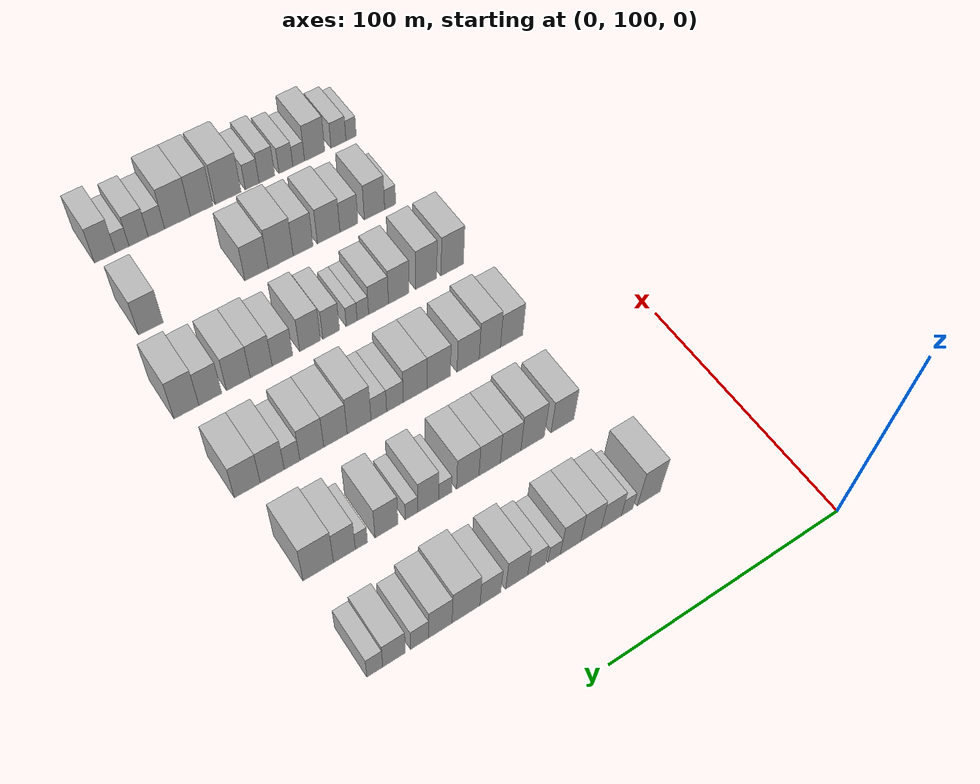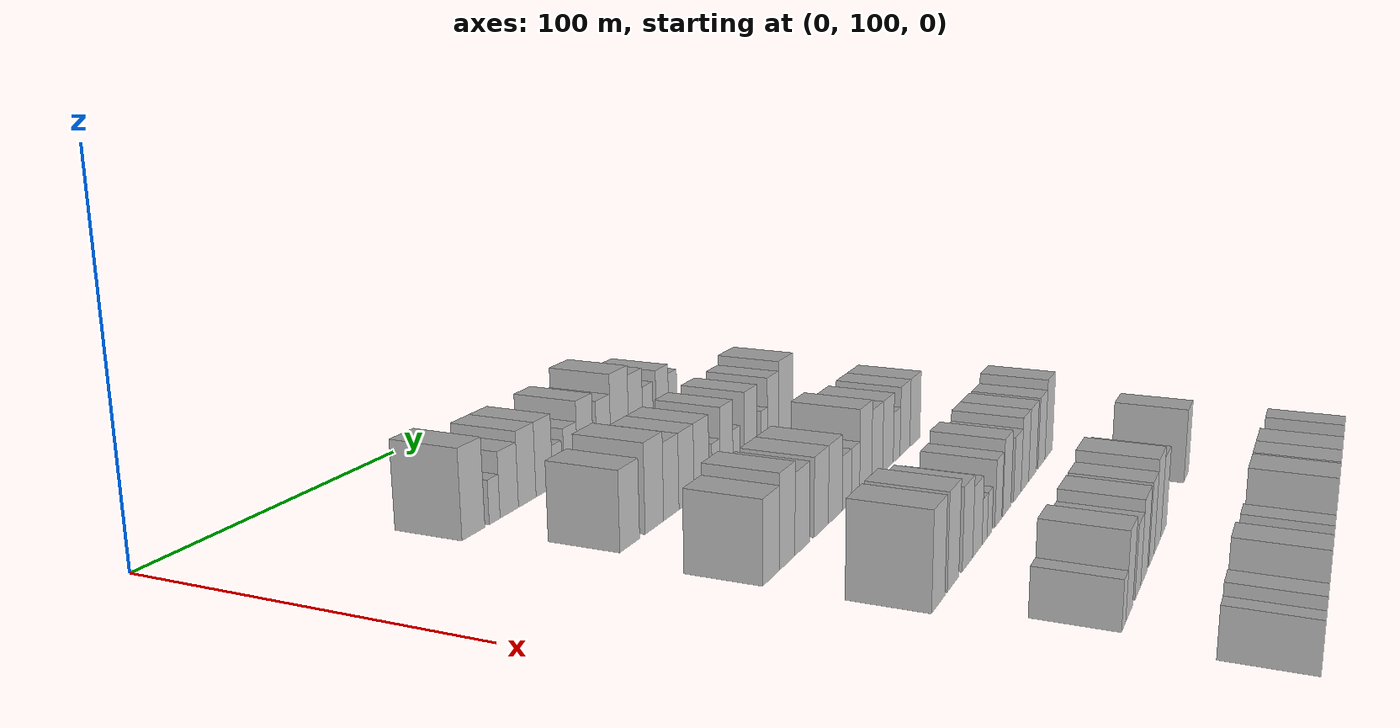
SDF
<sdf version="1.6">
 <world name="default">
  <model name="building_91">
   <static>1</static>
   <pose>50.0000 151.5996 0 0.000000 0.000000 0.000000</pose>
   <link name="link">
    <pose>0 0 12.00 0 0 0</pose>
    <collision name="collision"><geometry><box><size>20.0000 10.1320 24.0000</size></box></geometry></collision>
    <visual name="visual">
     <cast_shadows>0</cast_shadows>
     <geometry><box><size>20.0000 10.1320 24.0000</size></box></geometry>
     <material>
      <script>
       <uri>model://HANNAS_wall/materials/scripts</uri>
       <uri>model://HANNAS_wall/materials/textures</uri>
       <name>vrc/HANNAS_wall</name>
      </script>
     </material>
    </visual>
   </link>
  </model>
  <model name="building_92">
   <static>1</static>
   <pose>50.0000 161.1794 0 0.000000 0.000000 0.000000</pose>
   <link name="link">
    <pose>0 0 6.00 0 0 0</pose>
    <collision name="collision"><geometry><box><size>20.0000 5.0277 12.0000</size></box></geometry></collision>
    <visual name="visual">
     <cast_shadows>0</cast_shadows>
     <geometry><box><size>20.0000 5.0277 12.0000</size></box></geometry>
     <material>
      <script>
       <uri>model://HANNAS_wall/materials/scripts</uri>
       <uri>model://HANNAS_wall/materials/textures</uri>
       <name>vrc/HANNAS_wall</name>
      </script>
     </material>
    </visual>
   </link>
  </model>
  <model name="building_93">
   <static>1</static>
   <pose>50.0000 168.1023 0 0.000000 0.000000 0.000000</pose>
   <link name="link">
    <pose>0 0 9.00 0 0 0</pose>
    <collision name="collision"><geometry><box><size>20.0000 8.8181 18.0000</size></box></geometry></collision>
    <visual name="visual">
     <cast_shadows>0</cast_shadows>
     <geometry><box><size>20.0000 8.8181 18.0000</size></box></geometry>
     <material>
      <script>
       <uri>model://HANNAS_wall/materials/scripts</uri>
       <uri>model://HANNAS_wall/materials/textures</uri>
       <name>vrc/HANNAS_wall</name>
      </script>
     </material>
    </visual>
   </link>
  </model>
  <model name="building_94">
   <static>1</static>
   <pose>50.0000 176.9083 0 0.000000 0.000000 0.000000</pose>
   <link name="link">
    <pose>0 0 10.50 0 0 0</pose>
    <collision name="collision"><geometry><box><size>20.0000 8.7939 21.0000</size></box></geometry></collision>
    <visual name="visual">
     <cast_shadows>0</cast_shadows>
     <geometry><box><size>20.0000 8.7939 21.0000</size></box></geometry>
     <material>
      <script>
       <uri>model://HANNAS_wall/materials/scripts</uri>
       <uri>model://HANNAS_wall/materials/textures</uri>
       <name>vrc/HANNAS_wall</name>
      </script>
     </material>
    </visual>
   </link>
  </model>
  <model name="building_95">
   <static>1</static>
   <pose>50.0000 185.6488 0 0.000000 0.000000 0.000000</pose>
   <link name="link">
    <pose>0 0 10.50 0 0 0</pose>
    <collision name="collision"><geometry><box><size>20.0000 8.6871 21.0000</size></box></geometry></collision>
    <visual name="visual">
     <cast_shadows>0</cast_shadows>
     <geometry><box><size>20.0000 8.6871 21.0000</size></box></geometry>
     <material>
      <script>
       <uri>model://HANNAS_wall/materials/scripts</uri>
       <uri>model://HANNAS_wall/materials/textures</uri>
       <name>vrc/HANNAS_wall</name>
      </script>
     </material>
    </visual>
   </link>
  </model>
  <model name="building_96">
   <static>1</static>
   <pose>50.0000 192.6153 0 0.000000 0.000000 0.000000</pose>
   <link name="link">
    <pose>0 0 6.00 0 0 0</pose>
    <collision name="collision"><geometry><box><size>20.0000 5.2459 12.0000</size></box></geometry></collision>
    <visual name="visual">
     <cast_shadows>0</cast_shadows>
     <geometry><box><size>20.0000 5.2459 12.0000</size></box></geometry>
     <material>
      <script>
       <uri>model://HANNAS_wall/materials/scripts</uri>
       <uri>model://HANNAS_wall/materials/textures</uri>
       <name>vrc/HANNAS_wall</name>
      </script>
     </material>
    </visual>
   </link>
  </model>
  <model name="building_97">
   <static>1</static>
   <pose>50.0000 199.9353 0 0.000000 0.000000 0.000000</pose>
   <link name="link">
    <pose>0 0 7.50 0 0 0</pose>
    <collision name="collision"><geometry><box><size>20.0000 7.3943 15.0000</size></box></geometry></collision>
    <visual name="visual">
     <cast_shadows>0</cast_shadows>
     <geometry><box><size>20.0000 7.3943 15.0000</size></box></geometry>
     <material>
      <script>
       <uri>model://HANNAS_wall/materials/scripts</uri>
       <uri>model://HANNAS_wall/materials/textures</uri>
       <name>vrc/HANNAS_wall</name>
      </script>
     </material>
    </visual>
   </link>
  </model>
  <model name="building_98">
   <static>1</static>
   <pose>50.0000 208.1953 0 0.000000 0.000000 0.000000</pose>
   <link name="link">
    <pose>0 0 10.50 0 0 0</pose>
    <collision name="collision"><geometry><box><size>20.0000 9.1257 21.0000</size></box></geometry></collision>
    <visual name="visual">
     <cast_shadows>0</cast_shadows>
     <geometry><box><size>20.0000 9.1257 21.0000</size></box></geometry>
     <material>
      <script>
       <uri>model://HANNAS_wall/materials/scripts</uri>
       <uri>model://HANNAS_wall/materials/textures</uri>
       <name>vrc/HANNAS_wall</name>
      </script>
     </material>
    </visual>
   </link>
  </model>
  <model name="building_99">
   <static>1</static>
   <pose>50.0000 218.9964 0 0.000000 0.000000 0.000000</pose>
   <link name="link">
    <pose>0 0 9.00 0 0 0</pose>
    <collision name="collision"><geometry><box><size>20.0000 8.4764 18.0000</size></box></geometry></collision>
    <visual name="visual">
     <cast_shadows>0</cast_shadows>
     <geometry><box><size>20.0000 8.4764 18.0000</size></box></geometry>
     <material>
      <script>
       <uri>model://HANNAS_wall/materials/scripts</uri>
       <uri>model://HANNAS_wall/materials/textures</uri>
       <name>vrc/HANNAS_wall</name>
      </script>
     </material>
    </visual>
   </link>
  </model>
  <model name="building_100">
   <static>1</static>
   <pose>50.0000 228.8260 0 0.000000 0.000000 0.000000</pose>
   <link name="link">
    <pose>0 0 12.00 0 0 0</pose>
    <collision name="collision"><geometry><box><size>20.0000 11.1829 24.0000</size></box></geometry></collision>
    <visual name="visual">
     <cast_shadows>0</cast_shadows>
     <geometry><box><size>20.0000 11.1829 24.0000</size></box></geometry>
     <material>
      <script>
       <uri>model://HANNAS_wall/materials/scripts</uri>
       <uri>model://HANNAS_wall/materials/textures</uri>
       <name>vrc/HANNAS_wall</name>
      </script>
     </material>
    </visual>
   </link>
  </model>
  <model name="building_101">
   <static>1</static>
   <pose>50.0000 239.0313 0 0.000000 0.000000 0.000000</pose>
   <link name="link">
    <pose>0 0 10.50 0 0 0</pose>
    <collision name="collision"><geometry><box><size>20.0000 9.2277 21.0000</size></box></geometry></collision>
    <visual name="visual">
     <cast_shadows>0</cast_shadows>
     <geometry><box><size>20.0000 9.2277 21.0000</size></box></geometry>
     <material>
      <script>
       <uri>model://HANNAS_wall/materials/scripts</uri>
       <uri>model://HANNAS_wall/materials/textures</uri>
       <name>vrc/HANNAS_wall</name>
      </script>
     </material>
    </visual>
   </link>
  </model>
  <model name="building_102">
   <static>1</static>
   <pose>50.0000 247.1735 0 0.000000 0.000000 0.000000</pose>
   <link name="link">
    <pose>0 0 7.50 0 0 0</pose>
    <collision name="collision"><geometry><box><size>20.0000 7.0565 15.0000</size></box></geometry></collision>
    <visual name="visual">
     <cast_shadows>0</cast_shadows>
     <geometry><box><size>20.0000 7.0565 15.0000</size></box></geometry>
     <material>
      <script>
       <uri>model://HANNAS_wall/materials/scripts</uri>
       <uri>model://HANNAS_wall/materials/textures</uri>
       <name>vrc/HANNAS_wall</name>
      </script>
     </material>
    </visual>
   </link>
  </model>
  <model name="building_103">
   <static>1</static>
   <pose>50.0000 257.0515 0 0.000000 0.000000 0.000000</pose>
   <link name="link">
    <pose>0 0 9.00 0 0 0</pose>
    <collision name="collision"><geometry><box><size>20.0000 8.6996 18.0000</size></box></geometry></collision>
    <visual name="visual">
     <cast_shadows>0</cast_shadows>
     <geometry><box><size>20.0000 8.6996 18.0000</size></box></geometry>
     <material>
      <script>
       <uri>model://HANNAS_wall/materials/scripts</uri>
       <uri>model://HANNAS_wall/materials/textures</uri>
       <name>vrc/HANNAS_wall</name>
      </script>
     </material>
    </visual>
   </link>
  </model>
  <model name="building_104">
   <static>1</static>
   <pose>50.0000 264.4461 0 0.000000 0.000000 0.000000</pose>
   <link name="link">
    <pose>0 0 7.50 0 0 0</pose>
    <collision name="collision"><geometry><box><size>20.0000 6.0895 15.0000</size></box></geometry></collision>
    <visual name="visual">
     <cast_shadows>0</cast_shadows>
     <geometry><box><size>20.0000 6.0895 15.0000</size></box></geometry>
     <material>
      <script>
       <uri>model://HANNAS_wall/materials/scripts</uri>
       <uri>model://HANNAS_wall/materials/textures</uri>
       <name>vrc/HANNAS_wall</name>
      </script>
     </material>
    </visual>
   </link>
  </model>
  <model name="building_218">
   <static>1</static>
   <pose>90.0000 159.2959 0 0.000000 0.000000 0.000000</pose>
   <link name="link">
    <pose>0 0 10.50 0 0 0</pose>
    <collision name="collision"><geometry><box><size>20.0000 10.3007 21.0000</size></box></geometry></collision>
    <visual name="visual">
     <cast_shadows>0</cast_shadows>
     <geometry><box><size>20.0000 10.3007 21.0000</size></box></geometry>
     <material>
      <script>
       <uri>model://HANNAS_wall/materials/scripts</uri>
       <uri>model://HANNAS_wall/materials/textures</uri>
       <name>vrc/HANNAS_wall</name>
      </script>
     </material>
    </visual>
   </link>
  </model>
  <model name="building_219">
   <static>1</static>
   <pose>90.0000 172.6438 0 0.000000 0.000000 0.000000</pose>
   <link name="link">
    <pose>0 0 12.00 0 0 0</pose>
    <collision name="collision"><geometry><box><size>20.0000 10.3951 24.0000</size></box></geometry></collision>
    <visual name="visual">
     <cast_shadows>0</cast_shadows>
     <geometry><box><size>20.0000 10.3951 24.0000</size></box></geometry>
     <material>
      <script>
       <uri>model://HANNAS_wall/materials/scripts</uri>
       <uri>model://HANNAS_wall/materials/textures</uri>
       <name>vrc/HANNAS_wall</name>
      </script>
     </material>
    </visual>
   </link>
  </model>
  <model name="building_220">
   <static>1</static>
   <pose>90.0000 182.3022 0 0.000000 0.000000 0.000000</pose>
   <link name="link">
    <pose>0 0 10.50 0 0 0</pose>
    <collision name="collision"><geometry><box><size>20.0000 8.9218 21.0000</size></box></geometry></collision>
    <visual name="visual">
     <cast_shadows>0</cast_shadows>
     <geometry><box><size>20.0000 8.9218 21.0000</size></box></geometry>
     <material>
      <script>
       <uri>model://HANNAS_wall/materials/scripts</uri>
       <uri>model://HANNAS_wall/materials/textures</uri>
       <name>vrc/HANNAS_wall</name>
      </script>
     </material>
    </visual>
   </link>
  </model>
  <model name="building_221">
   <static>1</static>
   <pose>90.0000 191.3664 0 0.000000 0.000000 0.000000</pose>
   <link name="link">
    <pose>0 0 10.50 0 0 0</pose>
    <collision name="collision"><geometry><box><size>20.0000 9.2066 21.0000</size></box></geometry></collision>
    <visual name="visual">
     <cast_shadows>0</cast_shadows>
     <geometry><box><size>20.0000 9.2066 21.0000</size></box></geometry>
     <material>
      <script>
       <uri>model://HANNAS_wall/materials/scripts</uri>
       <uri>model://HANNAS_wall/materials/textures</uri>
       <name>vrc/HANNAS_wall</name>
      </script>
     </material>
    </visual>
   </link>
  </model>
  <model name="building_222">
   <static>1</static>
   <pose>90.0000 200.7446 0 0.000000 0.000000 0.000000</pose>
   <link name="link">
    <pose>0 0 10.50 0 0 0</pose>
    <collision name="collision"><geometry><box><size>20.0000 9.5499 21.0000</size></box></geometry></collision>
    <visual name="visual">
     <cast_shadows>0</cast_shadows>
     <geometry><box><size>20.0000 9.5499 21.0000</size></box></geometry>
     <material>
      <script>
       <uri>model://HANNAS_wall/materials/scripts</uri>
       <uri>model://HANNAS_wall/materials/textures</uri>
       <name>vrc/HANNAS_wall</name>
      </script>
     </material>
    </visual>
   </link>
  </model>
  <model name="building_223">
   <static>1</static>
   <pose>90.0000 210.2718 0 0.000000 0.000000 0.000000</pose>
   <link name="link">
    <pose>0 0 6.00 0 0 0</pose>
    <collision name="collision"><geometry><box><size>20.0000 5.5044 12.0000</size></box></geometry></collision>
    <visual name="visual">
     <cast_shadows>0</cast_shadows>
     <geometry><box><size>20.0000 5.5044 12.0000</size></box></geometry>
     <material>
      <script>
       <uri>model://HANNAS_wall/materials/scripts</uri>
       <uri>model://HANNAS_wall/materials/textures</uri>
       <name>vrc/HANNAS_wall</name>
      </script>
     </material>
    </visual>
   </link>
  </model>
  <model name="building_224">
   <static>1</static>
   <pose>90.0000 217.3687 0 0.000000 0.000000 0.000000</pose>
   <link name="link">
    <pose>0 0 10.50 0 0 0</pose>
    <collision name="collision"><geometry><box><size>20.0000 8.6893 21.0000</size></box></geometry></collision>
    <visual name="visual">
     <cast_shadows>0</cast_shadows>
     <geometry><box><size>20.0000 8.6893 21.0000</size></box></geometry>
     <material>
      <script>
       <uri>model://HANNAS_wall/materials/scripts</uri>
       <uri>model://HANNAS_wall/materials/textures</uri>
       <name>vrc/HANNAS_wall</name>
      </script>
     </material>
    </visual>
   </link>
  </model>
  <model name="building_225">
   <static>1</static>
   <pose>90.0000 224.3117 0 0.000000 0.000000 0.000000</pose>
   <link name="link">
    <pose>0 0 6.00 0 0 0</pose>
    <collision name="collision"><geometry><box><size>20.0000 5.1967 12.0000</size></box></geometry></collision>
    <visual name="visual">
     <cast_shadows>0</cast_shadows>
     <geometry><box><size>20.0000 5.1967 12.0000</size></box></geometry>
     <material>
      <script>
       <uri>model://HANNAS_wall/materials/scripts</uri>
       <uri>model://HANNAS_wall/materials/textures</uri>
       <name>vrc/HANNAS_wall</name>
      </script>
     </material>
    </visual>
   </link>
  </model>
  <model name="building_226">
   <static>1</static>
   <pose>90.0000 234.5805 0 0.000000 0.000000 0.000000</pose>
   <link name="link">
    <pose>0 0 10.50 0 0 0</pose>
    <collision name="collision"><geometry><box><size>20.0000 9.3409 21.0000</size></box></geometry></collision>
    <visual name="visual">
     <cast_shadows>0</cast_shadows>
     <geometry><box><size>20.0000 9.3409 21.0000</size></box></geometry>
     <material>
      <script>
       <uri>model://HANNAS_wall/materials/scripts</uri>
       <uri>model://HANNAS_wall/materials/textures</uri>
       <name>vrc/HANNAS_wall</name>
      </script>
     </material>
    </visual>
   </link>
  </model>
  <model name="building_227">
   <static>1</static>
   <pose>90.0000 244.6933 0 0.000000 0.000000 0.000000</pose>
   <link name="link">
    <pose>0 0 6.00 0 0 0</pose>
    <collision name="collision"><geometry><box><size>20.0000 4.8847 12.0000</size></box></geometry></collision>
    <visual name="visual">
     <cast_shadows>0</cast_shadows>
     <geometry><box><size>20.0000 4.8847 12.0000</size></box></geometry>
     <material>
      <script>
       <uri>model://HANNAS_wall/materials/scripts</uri>
       <uri>model://HANNAS_wall/materials/textures</uri>
       <name>vrc/HANNAS_wall</name>
      </script>
     </material>
    </visual>
   </link>
  </model>
  <model name="building_228">
   <static>1</static>
   <pose>90.0000 251.4967 0 0.000000 0.000000 0.000000</pose>
   <link name="link">
    <pose>0 0 10.50 0 0 0</pose>
    <collision name="collision"><geometry><box><size>20.0000 8.7221 21.0000</size></box></geometry></collision>
    <visual name="visual">
     <cast_shadows>0</cast_shadows>
     <geometry><box><size>20.0000 8.7221 21.0000</size></box></geometry>
     <material>
      <script>
       <uri>model://HANNAS_wall/materials/scripts</uri>
       <uri>model://HANNAS_wall/materials/textures</uri>
       <name>vrc/HANNAS_wall</name>
      </script>
     </material>
    </visual>
   </link>
  </model>
  <model name="building_229">
   <static>1</static>
   <pose>90.0000 261.8526 0 0.000000 0.000000 0.000000</pose>
   <link name="link">
    <pose>0 0 12.00 0 0 0</pose>
    <collision name="collision"><geometry><box><size>20.0000 11.9895 24.0000</size></box></geometry></collision>
    <visual name="visual">
     <cast_shadows>0</cast_shadows>
     <geometry><box><size>20.0000 11.9895 24.0000</size></box></geometry>
     <material>
      <script>
       <uri>model://HANNAS_wall/materials/scripts</uri>
       <uri>model://HANNAS_wall/materials/textures</uri>
       <name>vrc/HANNAS_wall</name>
      </script>
     </material>
    </visual>
   </link>
  </model>
  <model name="building_345">
   <static>1</static>
   <pose>130.0000 153.3876 0 0.000000 0.000000 0.000000</pose>
   <link name="link">
    <pose>0 0 10.50 0 0 0</pose>
    <collision name="collision"><geometry><box><size>20.0000 10.2588 21.0000</size></box></geometry></collision>
    <visual name="visual">
     <cast_shadows>0</cast_shadows>
     <geometry><box><size>20.0000 10.2588 21.0000</size></box></geometry>
     <material>
      <script>
       <uri>model://HANNAS_wall/materials/scripts</uri>
       <uri>model://HANNAS_wall/materials/textures</uri>
       <name>vrc/HANNAS_wall</name>
      </script>
     </material>
    </visual>
   </link>
  </model>
  <model name="building_346">
   <static>1</static>
   <pose>130.0000 163.3632 0 0.000000 0.000000 0.000000</pose>
   <link name="link">
    <pose>0 0 12.00 0 0 0</pose>
    <collision name="collision"><geometry><box><size>20.0000 9.6924 24.0000</size></box></geometry></collision>
    <visual name="visual">
     <cast_shadows>0</cast_shadows>
     <geometry><box><size>20.0000 9.6924 24.0000</size></box></geometry>
     <material>
      <script>
       <uri>model://HANNAS_wall/materials/scripts</uri>
       <uri>model://HANNAS_wall/materials/textures</uri>
       <name>vrc/HANNAS_wall</name>
      </script>
     </material>
    </visual>
   </link>
  </model>
  <model name="building_347">
   <static>1</static>
   <pose>130.0000 173.1951 0 0.000000 0.000000 0.000000</pose>
   <link name="link">
    <pose>0 0 10.50 0 0 0</pose>
    <collision name="collision"><geometry><box><size>20.0000 9.9715 21.0000</size></box></geometry></collision>
    <visual name="visual">
     <cast_shadows>0</cast_shadows>
     <geometry><box><size>20.0000 9.9715 21.0000</size></box></geometry>
     <material>
      <script>
       <uri>model://HANNAS_wall/materials/scripts</uri>
       <uri>model://HANNAS_wall/materials/textures</uri>
       <name>vrc/HANNAS_wall</name>
      </script>
     </material>
    </visual>
   </link>
  </model>
  <model name="building_348">
   <static>1</static>
   <pose>130.0000 186.3233 0 0.000000 0.000000 0.000000</pose>
   <link name="link">
    <pose>0 0 10.50 0 0 0</pose>
    <collision name="collision"><geometry><box><size>20.0000 10.2847 21.0000</size></box></geometry></collision>
    <visual name="visual">
     <cast_shadows>0</cast_shadows>
     <geometry><box><size>20.0000 10.2847 21.0000</size></box></geometry>
     <material>
      <script>
       <uri>model://HANNAS_wall/materials/scripts</uri>
       <uri>model://HANNAS_wall/materials/textures</uri>
       <name>vrc/HANNAS_wall</name>
      </script>
     </material>
    </visual>
   </link>
  </model>
  <model name="building_349">
   <static>1</static>
   <pose>130.0000 196.6733 0 0.000000 0.000000 0.000000</pose>
   <link name="link">
    <pose>0 0 10.50 0 0 0</pose>
    <collision name="collision"><geometry><box><size>20.0000 10.4153 21.0000</size></box></geometry></collision>
    <visual name="visual">
     <cast_shadows>0</cast_shadows>
     <geometry><box><size>20.0000 10.4153 21.0000</size></box></geometry>
     <material>
      <script>
       <uri>model://HANNAS_wall/materials/scripts</uri>
       <uri>model://HANNAS_wall/materials/textures</uri>
       <name>vrc/HANNAS_wall</name>
      </script>
     </material>
    </visual>
   </link>
  </model>
  <model name="building_350">
   <static>1</static>
   <pose>130.0000 205.4873 0 0.000000 0.000000 0.000000</pose>
   <link name="link">
    <pose>0 0 7.50 0 0 0</pose>
    <collision name="collision"><geometry><box><size>20.0000 7.2128 15.0000</size></box></geometry></collision>
    <visual name="visual">
     <cast_shadows>0</cast_shadows>
     <geometry><box><size>20.0000 7.2128 15.0000</size></box></geometry>
     <material>
      <script>
       <uri>model://HANNAS_wall/materials/scripts</uri>
       <uri>model://HANNAS_wall/materials/textures</uri>
       <name>vrc/HANNAS_wall</name>
      </script>
     </material>
    </visual>
   </link>
  </model>
  <model name="building_351">
   <static>1</static>
   <pose>130.0000 212.4471 0 0.000000 0.000000 0.000000</pose>
   <link name="link">
    <pose>0 0 7.50 0 0 0</pose>
    <collision name="collision"><geometry><box><size>20.0000 6.7067 15.0000</size></box></geometry></collision>
    <visual name="visual">
     <cast_shadows>0</cast_shadows>
     <geometry><box><size>20.0000 6.7067 15.0000</size></box></geometry>
     <material>
      <script>
       <uri>model://HANNAS_wall/materials/scripts</uri>
       <uri>model://HANNAS_wall/materials/textures</uri>
       <name>vrc/HANNAS_wall</name>
      </script>
     </material>
    </visual>
   </link>
  </model>
  <model name="building_352">
   <static>1</static>
   <pose>130.0000 220.8555 0 0.000000 0.000000 0.000000</pose>
   <link name="link">
    <pose>0 0 12.00 0 0 0</pose>
    <collision name="collision"><geometry><box><size>20.0000 10.1101 24.0000</size></box></geometry></collision>
    <visual name="visual">
     <cast_shadows>0</cast_shadows>
     <geometry><box><size>20.0000 10.1101 24.0000</size></box></geometry>
     <material>
      <script>
       <uri>model://HANNAS_wall/materials/scripts</uri>
       <uri>model://HANNAS_wall/materials/textures</uri>
       <name>vrc/HANNAS_wall</name>
      </script>
     </material>
    </visual>
   </link>
  </model>
  <model name="building_353">
   <static>1</static>
   <pose>130.0000 230.7937 0 0.000000 0.000000 0.000000</pose>
   <link name="link">
    <pose>0 0 10.50 0 0 0</pose>
    <collision name="collision"><geometry><box><size>20.0000 9.7663 21.0000</size></box></geometry></collision>
    <visual name="visual">
     <cast_shadows>0</cast_shadows>
     <geometry><box><size>20.0000 9.7663 21.0000</size></box></geometry>
     <material>
      <script>
       <uri>model://HANNAS_wall/materials/scripts</uri>
       <uri>model://HANNAS_wall/materials/textures</uri>
       <name>vrc/HANNAS_wall</name>
      </script>
     </material>
    </visual>
   </link>
  </model>
  <model name="building_354">
   <static>1</static>
   <pose>130.0000 240.6231 0 0.000000 0.000000 0.000000</pose>
   <link name="link">
    <pose>0 0 10.50 0 0 0</pose>
    <collision name="collision"><geometry><box><size>20.0000 9.8925 21.0000</size></box></geometry></collision>
    <visual name="visual">
     <cast_shadows>0</cast_shadows>
     <geometry><box><size>20.0000 9.8925 21.0000</size></box></geometry>
     <material>
      <script>
       <uri>model://HANNAS_wall/materials/scripts</uri>
       <uri>model://HANNAS_wall/materials/textures</uri>
       <name>vrc/HANNAS_wall</name>
      </script>
     </material>
    </visual>
   </link>
  </model>
  <model name="building_355">
   <static>1</static>
   <pose>130.0000 248.7750 0 0.000000 0.000000 0.000000</pose>
   <link name="link">
    <pose>0 0 7.50 0 0 0</pose>
    <collision name="collision"><geometry><box><size>20.0000 6.4114 15.0000</size></box></geometry></collision>
    <visual name="visual">
     <cast_shadows>0</cast_shadows>
     <geometry><box><size>20.0000 6.4114 15.0000</size></box></geometry>
     <material>
      <script>
       <uri>model://HANNAS_wall/materials/scripts</uri>
       <uri>model://HANNAS_wall/materials/textures</uri>
       <name>vrc/HANNAS_wall</name>
      </script>
     </material>
    </visual>
   </link>
  </model>
  <model name="building_356">
   <static>1</static>
   <pose>130.0000 256.8451 0 0.000000 0.000000 0.000000</pose>
   <link name="link">
    <pose>0 0 10.50 0 0 0</pose>
    <collision name="collision"><geometry><box><size>20.0000 9.7288 21.0000</size></box></geometry></collision>
    <visual name="visual">
     <cast_shadows>0</cast_shadows>
     <geometry><box><size>20.0000 9.7288 21.0000</size></box></geometry>
     <material>
      <script>
       <uri>model://HANNAS_wall/materials/scripts</uri>
       <uri>model://HANNAS_wall/materials/textures</uri>
       <name>vrc/HANNAS_wall</name>
      </script>
     </material>
    </visual>
   </link>
  </model>
  <model name="building_357">
   <static>1</static>
   <pose>130.0000 266.9234 0 0.000000 0.000000 0.000000</pose>
   <link name="link">
    <pose>0 0 10.50 0 0 0</pose>
    <collision name="collision"><geometry><box><size>20.0000 10.4277 21.0000</size></box></geometry></collision>
    <visual name="visual">
     <cast_shadows>0</cast_shadows>
     <geometry><box><size>20.0000 10.4277 21.0000</size></box></geometry>
     <material>
      <script>
       <uri>model://HANNAS_wall/materials/scripts</uri>
       <uri>model://HANNAS_wall/materials/textures</uri>
       <name>vrc/HANNAS_wall</name>
      </script>
     </material>
    </visual>
   </link>
  </model>
  <model name="building_493">
   <static>1</static>
   <pose>170.0000 153.3156 0 0.000000 0.000000 0.000000</pose>
   <link name="link">
    <pose>0 0 12.00 0 0 0</pose>
    <collision name="collision"><geometry><box><size>20.0000 10.5510 24.0000</size></box></geometry></collision>
    <visual name="visual">
     <cast_shadows>0</cast_shadows>
     <geometry><box><size>20.0000 10.5510 24.0000</size></box></geometry>
     <material>
      <script>
       <uri>model://HANNAS_wall/materials/scripts</uri>
       <uri>model://HANNAS_wall/materials/textures</uri>
       <name>vrc/HANNAS_wall</name>
      </script>
     </material>
    </visual>
   </link>
  </model>
  <model name="building_494">
   <static>1</static>
   <pose>170.0000 165.4913 0 0.000000 0.000000 0.000000</pose>
   <link name="link">
    <pose>0 0 12.00 0 0 0</pose>
    <collision name="collision"><geometry><box><size>20.0000 9.8005 24.0000</size></box></geometry></collision>
    <visual name="visual">
     <cast_shadows>0</cast_shadows>
     <geometry><box><size>20.0000 9.8005 24.0000</size></box></geometry>
     <material>
      <script>
       <uri>model://HANNAS_wall/materials/scripts</uri>
       <uri>model://HANNAS_wall/materials/textures</uri>
       <name>vrc/HANNAS_wall</name>
      </script>
     </material>
    </visual>
   </link>
  </model>
  <model name="building_495">
   <static>1</static>
   <pose>170.0000 178.1175 0 0.000000 0.000000 0.000000</pose>
   <link name="link">
    <pose>0 0 10.50 0 0 0</pose>
    <collision name="collision"><geometry><box><size>20.0000 9.4519 21.0000</size></box></geometry></collision>
    <visual name="visual">
     <cast_shadows>0</cast_shadows>
     <geometry><box><size>20.0000 9.4519 21.0000</size></box></geometry>
     <material>
      <script>
       <uri>model://HANNAS_wall/materials/scripts</uri>
       <uri>model://HANNAS_wall/materials/textures</uri>
       <name>vrc/HANNAS_wall</name>
      </script>
     </material>
    </visual>
   </link>
  </model>
  <model name="building_496">
   <static>1</static>
   <pose>170.0000 187.3290 0 0.000000 0.000000 0.000000</pose>
   <link name="link">
    <pose>0 0 9.00 0 0 0</pose>
    <collision name="collision"><geometry><box><size>20.0000 8.9710 18.0000</size></box></geometry></collision>
    <visual name="visual">
     <cast_shadows>0</cast_shadows>
     <geometry><box><size>20.0000 8.9710 18.0000</size></box></geometry>
     <material>
      <script>
       <uri>model://HANNAS_wall/materials/scripts</uri>
       <uri>model://HANNAS_wall/materials/textures</uri>
       <name>vrc/HANNAS_wall</name>
      </script>
     </material>
    </visual>
   </link>
  </model>
  <model name="building_497">
   <static>1</static>
   <pose>170.0000 194.3818 0 0.000000 0.000000 0.000000</pose>
   <link name="link">
    <pose>0 0 6.00 0 0 0</pose>
    <collision name="collision"><geometry><box><size>20.0000 5.1347 12.0000</size></box></geometry></collision>
    <visual name="visual">
     <cast_shadows>0</cast_shadows>
     <geometry><box><size>20.0000 5.1347 12.0000</size></box></geometry>
     <material>
      <script>
       <uri>model://HANNAS_wall/materials/scripts</uri>
       <uri>model://HANNAS_wall/materials/textures</uri>
       <name>vrc/HANNAS_wall</name>
      </script>
     </material>
    </visual>
   </link>
  </model>
  <model name="building_498">
   <static>1</static>
   <pose>170.0000 199.3758 0 0.000000 0.000000 0.000000</pose>
   <link name="link">
    <pose>0 0 6.00 0 0 0</pose>
    <collision name="collision"><geometry><box><size>20.0000 4.8533 12.0000</size></box></geometry></collision>
    <visual name="visual">
     <cast_shadows>0</cast_shadows>
     <geometry><box><size>20.0000 4.8533 12.0000</size></box></geometry>
     <material>
      <script>
       <uri>model://HANNAS_wall/materials/scripts</uri>
       <uri>model://HANNAS_wall/materials/textures</uri>
       <name>vrc/HANNAS_wall</name>
      </script>
     </material>
    </visual>
   </link>
  </model>
  <model name="building_499">
   <static>1</static>
   <pose>170.0000 208.4765 0 0.000000 0.000000 0.000000</pose>
   <link name="link">
    <pose>0 0 9.00 0 0 0</pose>
    <collision name="collision"><geometry><box><size>20.0000 7.3481 18.0000</size></box></geometry></collision>
    <visual name="visual">
     <cast_shadows>0</cast_shadows>
     <geometry><box><size>20.0000 7.3481 18.0000</size></box></geometry>
     <material>
      <script>
       <uri>model://HANNAS_wall/materials/scripts</uri>
       <uri>model://HANNAS_wall/materials/textures</uri>
       <name>vrc/HANNAS_wall</name>
      </script>
     </material>
    </visual>
   </link>
  </model>
  <model name="building_500">
   <static>1</static>
   <pose>170.0000 217.7010 0 0.000000 0.000000 0.000000</pose>
   <link name="link">
    <pose>0 0 10.50 0 0 0</pose>
    <collision name="collision"><geometry><box><size>20.0000 9.1008 21.0000</size></box></geometry></collision>
    <visual name="visual">
     <cast_shadows>0</cast_shadows>
     <geometry><box><size>20.0000 9.1008 21.0000</size></box></geometry>
     <material>
      <script>
       <uri>model://HANNAS_wall/materials/scripts</uri>
       <uri>model://HANNAS_wall/materials/textures</uri>
       <name>vrc/HANNAS_wall</name>
      </script>
     </material>
    </visual>
   </link>
  </model>
  <model name="building_501">
   <static>1</static>
   <pose>170.0000 229.6651 0 0.000000 0.000000 0.000000</pose>
   <link name="link">
    <pose>0 0 9.00 0 0 0</pose>
    <collision name="collision"><geometry><box><size>20.0000 8.8274 18.0000</size></box></geometry></collision>
    <visual name="visual">
     <cast_shadows>0</cast_shadows>
     <geometry><box><size>20.0000 8.8274 18.0000</size></box></geometry>
     <material>
      <script>
       <uri>model://HANNAS_wall/materials/scripts</uri>
       <uri>model://HANNAS_wall/materials/textures</uri>
       <name>vrc/HANNAS_wall</name>
      </script>
     </material>
    </visual>
   </link>
  </model>
  <model name="building_502">
   <static>1</static>
   <pose>170.0000 238.7145 0 0.000000 0.000000 0.000000</pose>
   <link name="link">
    <pose>0 0 10.50 0 0 0</pose>
    <collision name="collision"><geometry><box><size>20.0000 9.2713 21.0000</size></box></geometry></collision>
    <visual name="visual">
     <cast_shadows>0</cast_shadows>
     <geometry><box><size>20.0000 9.2713 21.0000</size></box></geometry>
     <material>
      <script>
       <uri>model://HANNAS_wall/materials/scripts</uri>
       <uri>model://HANNAS_wall/materials/textures</uri>
       <name>vrc/HANNAS_wall</name>
      </script>
     </material>
    </visual>
   </link>
  </model>
  <model name="building_503">
   <static>1</static>
   <pose>170.0000 248.3577 0 0.000000 0.000000 0.000000</pose>
   <link name="link">
    <pose>0 0 10.50 0 0 0</pose>
    <collision name="collision"><geometry><box><size>20.0000 10.0151 21.0000</size></box></geometry></collision>
    <visual name="visual">
     <cast_shadows>0</cast_shadows>
     <geometry><box><size>20.0000 10.0151 21.0000</size></box></geometry>
     <material>
      <script>
       <uri>model://HANNAS_wall/materials/scripts</uri>
       <uri>model://HANNAS_wall/materials/textures</uri>
       <name>vrc/HANNAS_wall</name>
      </script>
     </material>
    </visual>
   </link>
  </model>
  <model name="building_504">
   <static>1</static>
   <pose>170.0000 260.0826 0 0.000000 0.000000 0.000000</pose>
   <link name="link">
    <pose>0 0 10.50 0 0 0</pose>
    <collision name="collision"><geometry><box><size>20.0000 9.4345 21.0000</size></box></geometry></collision>
    <visual name="visual">
     <cast_shadows>0</cast_shadows>
     <geometry><box><size>20.0000 9.4345 21.0000</size></box></geometry>
     <material>
      <script>
       <uri>model://HANNAS_wall/materials/scripts</uri>
       <uri>model://HANNAS_wall/materials/textures</uri>
       <name>vrc/HANNAS_wall</name>
      </script>
     </material>
    </visual>
   </link>
  </model>
  <model name="building_505">
   <static>1</static>
   <pose>170.0000 269.9133 0 0.000000 0.000000 0.000000</pose>
   <link name="link">
    <pose>0 0 12.00 0 0 0</pose>
    <collision name="collision"><geometry><box><size>20.0000 10.2269 24.0000</size></box></geometry></collision>
    <visual name="visual">
     <cast_shadows>0</cast_shadows>
     <geometry><box><size>20.0000 10.2269 24.0000</size></box></geometry>
     <material>
      <script>
       <uri>model://HANNAS_wall/materials/scripts</uri>
       <uri>model://HANNAS_wall/materials/textures</uri>
       <name>vrc/HANNAS_wall</name>
      </script>
     </material>
    </visual>
   </link>
  </model>
  <model name="building_634">
   <static>1</static>
   <pose>210.0000 156.5758 0 0.000000 0.000000 0.000000</pose>
   <link name="link">
    <pose>0 0 6.00 0 0 0</pose>
    <collision name="collision"><geometry><box><size>20.0000 5.2862 12.0000</size></box></geometry></collision>
    <visual name="visual">
     <cast_shadows>0</cast_shadows>
     <geometry><box><size>20.0000 5.2862 12.0000</size></box></geometry>
     <material>
      <script>
       <uri>model://HANNAS_wall/materials/scripts</uri>
       <uri>model://HANNAS_wall/materials/textures</uri>
       <name>vrc/HANNAS_wall</name>
      </script>
     </material>
    </visual>
   </link>
  </model>
  <model name="building_635">
   <static>1</static>
   <pose>210.0000 164.0242 0 0.000000 0.000000 0.000000</pose>
   <link name="link">
    <pose>0 0 10.50 0 0 0</pose>
    <collision name="collision"><geometry><box><size>20.0000 9.6107 21.0000</size></box></geometry></collision>
    <visual name="visual">
     <cast_shadows>0</cast_shadows>
     <geometry><box><size>20.0000 9.6107 21.0000</size></box></geometry>
     <material>
      <script>
       <uri>model://HANNAS_wall/materials/scripts</uri>
       <uri>model://HANNAS_wall/materials/textures</uri>
       <name>vrc/HANNAS_wall</name>
      </script>
     </material>
    </visual>
   </link>
  </model>
  <model name="building_636">
   <static>1</static>
   <pose>210.0000 176.0406 0 0.000000 0.000000 0.000000</pose>
   <link name="link">
    <pose>0 0 9.00 0 0 0</pose>
    <collision name="collision"><geometry><box><size>20.0000 8.4221 18.0000</size></box></geometry></collision>
    <visual name="visual">
     <cast_shadows>0</cast_shadows>
     <geometry><box><size>20.0000 8.4221 18.0000</size></box></geometry>
     <material>
      <script>
       <uri>model://HANNAS_wall/materials/scripts</uri>
       <uri>model://HANNAS_wall/materials/textures</uri>
       <name>vrc/HANNAS_wall</name>
      </script>
     </material>
    </visual>
   </link>
  </model>
  <model name="building_637">
   <static>1</static>
   <pose>210.0000 185.4767 0 0.000000 0.000000 0.000000</pose>
   <link name="link">
    <pose>0 0 10.50 0 0 0</pose>
    <collision name="collision"><geometry><box><size>20.0000 10.4500 21.0000</size></box></geometry></collision>
    <visual name="visual">
     <cast_shadows>0</cast_shadows>
     <geometry><box><size>20.0000 10.4500 21.0000</size></box></geometry>
     <material>
      <script>
       <uri>model://HANNAS_wall/materials/scripts</uri>
       <uri>model://HANNAS_wall/materials/textures</uri>
       <name>vrc/HANNAS_wall</name>
      </script>
     </material>
    </visual>
   </link>
  </model>
  <model name="building_638">
   <static>1</static>
   <pose>210.0000 197.2156 0 0.000000 0.000000 0.000000</pose>
   <link name="link">
    <pose>0 0 10.50 0 0 0</pose>
    <collision name="collision"><geometry><box><size>20.0000 9.0280 21.0000</size></box></geometry></collision>
    <visual name="visual">
     <cast_shadows>0</cast_shadows>
     <geometry><box><size>20.0000 9.0280 21.0000</size></box></geometry>
     <material>
      <script>
       <uri>model://HANNAS_wall/materials/scripts</uri>
       <uri>model://HANNAS_wall/materials/textures</uri>
       <name>vrc/HANNAS_wall</name>
      </script>
     </material>
    </visual>
   </link>
  </model>
  <model name="building_639">
   <static>1</static>
   <pose>210.0000 207.3789 0 0.000000 0.000000 0.000000</pose>
   <link name="link">
    <pose>0 0 12.00 0 0 0</pose>
    <collision name="collision"><geometry><box><size>20.0000 11.2987 24.0000</size></box></geometry></collision>
    <visual name="visual">
     <cast_shadows>0</cast_shadows>
     <geometry><box><size>20.0000 11.2987 24.0000</size></box></geometry>
     <material>
      <script>
       <uri>model://HANNAS_wall/materials/scripts</uri>
       <uri>model://HANNAS_wall/materials/textures</uri>
       <name>vrc/HANNAS_wall</name>
      </script>
     </material>
    </visual>
   </link>
  </model>
  <model name="building_640">
   <static>1</static>
   <pose>210.0000 218.2626 0 0.000000 0.000000 0.000000</pose>
   <link name="link">
    <pose>0 0 10.50 0 0 0</pose>
    <collision name="collision"><geometry><box><size>20.0000 10.4687 21.0000</size></box></geometry></collision>
    <visual name="visual">
     <cast_shadows>0</cast_shadows>
     <geometry><box><size>20.0000 10.4687 21.0000</size></box></geometry>
     <material>
      <script>
       <uri>model://HANNAS_wall/materials/scripts</uri>
       <uri>model://HANNAS_wall/materials/textures</uri>
       <name>vrc/HANNAS_wall</name>
      </script>
     </material>
    </visual>
   </link>
  </model>
  <model name="building_641">
   <static>1</static>
   <pose>210.0000 264.1027 0 0.000000 0.000000 0.000000</pose>
   <link name="link">
    <pose>0 0 10.50 0 0 0</pose>
    <collision name="collision"><geometry><box><size>20.0000 10.4038 21.0000</size></box></geometry></collision>
    <visual name="visual">
     <cast_shadows>0</cast_shadows>
     <geometry><box><size>20.0000 10.4038 21.0000</size></box></geometry>
     <material>
      <script>
       <uri>model://HANNAS_wall/materials/scripts</uri>
       <uri>model://HANNAS_wall/materials/textures</uri>
       <name>vrc/HANNAS_wall</name>
      </script>
     </material>
    </visual>
   </link>
  </model>
  <model name="building_763">
   <static>1</static>
   <pose>250.0000 150.4483 0 0.000000 0.000000 0.000000</pose>
   <link name="link">
    <pose>0 0 6.00 0 0 0</pose>
    <collision name="collision"><geometry><box><size>20.0000 5.0463 12.0000</size></box></geometry></collision>
    <visual name="visual">
     <cast_shadows>0</cast_shadows>
     <geometry><box><size>20.0000 5.0463 12.0000</size></box></geometry>
     <material>
      <script>
       <uri>model://HANNAS_wall/materials/scripts</uri>
       <uri>model://HANNAS_wall/materials/textures</uri>
       <name>vrc/HANNAS_wall</name>
      </script>
     </material>
    </visual>
   </link>
  </model>
  <model name="building_764">
   <static>1</static>
   <pose>250.0000 156.6224 0 0.000000 0.000000 0.000000</pose>
   <link name="link">
    <pose>0 0 7.50 0 0 0</pose>
    <collision name="collision"><geometry><box><size>20.0000 7.3019 15.0000</size></box></geometry></collision>
    <visual name="visual">
     <cast_shadows>0</cast_shadows>
     <geometry><box><size>20.0000 7.3019 15.0000</size></box></geometry>
     <material>
      <script>
       <uri>model://HANNAS_wall/materials/scripts</uri>
       <uri>model://HANNAS_wall/materials/textures</uri>
       <name>vrc/HANNAS_wall</name>
      </script>
     </material>
    </visual>
   </link>
  </model>
  <model name="building_765">
   <static>1</static>
   <pose>250.0000 168.1483 0 0.000000 0.000000 0.000000</pose>
   <link name="link">
    <pose>0 0 10.50 0 0 0</pose>
    <collision name="collision"><geometry><box><size>20.0000 9.7499 21.0000</size></box></geometry></collision>
    <visual name="visual">
     <cast_shadows>0</cast_shadows>
     <geometry><box><size>20.0000 9.7499 21.0000</size></box></geometry>
     <material>
      <script>
       <uri>model://HANNAS_wall/materials/scripts</uri>
       <uri>model://HANNAS_wall/materials/textures</uri>
       <name>vrc/HANNAS_wall</name>
      </script>
     </material>
    </visual>
   </link>
  </model>
  <model name="building_766">
   <static>1</static>
   <pose>250.0000 175.8197 0 0.000000 0.000000 0.000000</pose>
   <link name="link">
    <pose>0 0 6.00 0 0 0</pose>
    <collision name="collision"><geometry><box><size>20.0000 5.5930 12.0000</size></box></geometry></collision>
    <visual name="visual">
     <cast_shadows>0</cast_shadows>
     <geometry><box><size>20.0000 5.5930 12.0000</size></box></geometry>
     <material>
      <script>
       <uri>model://HANNAS_wall/materials/scripts</uri>
       <uri>model://HANNAS_wall/materials/textures</uri>
       <name>vrc/HANNAS_wall</name>
      </script>
     </material>
    </visual>
   </link>
  </model>
  <model name="building_767">
   <static>1</static>
   <pose>250.0000 181.9211 0 0.000000 0.000000 0.000000</pose>
   <link name="link">
    <pose>0 0 7.50 0 0 0</pose>
    <collision name="collision"><geometry><box><size>20.0000 6.6097 15.0000</size></box></geometry></collision>
    <visual name="visual">
     <cast_shadows>0</cast_shadows>
     <geometry><box><size>20.0000 6.6097 15.0000</size></box></geometry>
     <material>
      <script>
       <uri>model://HANNAS_wall/materials/scripts</uri>
       <uri>model://HANNAS_wall/materials/textures</uri>
       <name>vrc/HANNAS_wall</name>
      </script>
     </material>
    </visual>
   </link>
  </model>
  <model name="building_768">
   <static>1</static>
   <pose>250.0000 190.9015 0 0.000000 0.000000 0.000000</pose>
   <link name="link">
    <pose>0 0 9.00 0 0 0</pose>
    <collision name="collision"><geometry><box><size>20.0000 7.3513 18.0000</size></box></geometry></collision>
    <visual name="visual">
     <cast_shadows>0</cast_shadows>
     <geometry><box><size>20.0000 7.3513 18.0000</size></box></geometry>
     <material>
      <script>
       <uri>model://HANNAS_wall/materials/scripts</uri>
       <uri>model://HANNAS_wall/materials/textures</uri>
       <name>vrc/HANNAS_wall</name>
      </script>
     </material>
    </visual>
   </link>
  </model>
  <model name="building_769">
   <static>1</static>
   <pose>250.0000 197.8022 0 0.000000 0.000000 0.000000</pose>
   <link name="link">
    <pose>0 0 7.50 0 0 0</pose>
    <collision name="collision"><geometry><box><size>20.0000 6.4500 15.0000</size></box></geometry></collision>
    <visual name="visual">
     <cast_shadows>0</cast_shadows>
     <geometry><box><size>20.0000 6.4500 15.0000</size></box></geometry>
     <material>
      <script>
       <uri>model://HANNAS_wall/materials/scripts</uri>
       <uri>model://HANNAS_wall/materials/textures</uri>
       <name>vrc/HANNAS_wall</name>
      </script>
     </material>
    </visual>
   </link>
  </model>
  <model name="building_770">
   <static>1</static>
   <pose>250.0000 208.9700 0 0.000000 0.000000 0.000000</pose>
   <link name="link">
    <pose>0 0 12.00 0 0 0</pose>
    <collision name="collision"><geometry><box><size>20.0000 11.8856 24.0000</size></box></geometry></collision>
    <visual name="visual">
     <cast_shadows>0</cast_shadows>
     <geometry><box><size>20.0000 11.8856 24.0000</size></box></geometry>
     <material>
      <script>
       <uri>model://HANNAS_wall/materials/scripts</uri>
       <uri>model://HANNAS_wall/materials/textures</uri>
       <name>vrc/HANNAS_wall</name>
      </script>
     </material>
    </visual>
   </link>
  </model>
  <model name="building_771">
   <static>1</static>
   <pose>250.0000 221.0235 0 0.000000 0.000000 0.000000</pose>
   <link name="link">
    <pose>0 0 12.00 0 0 0</pose>
    <collision name="collision"><geometry><box><size>20.0000 10.2214 24.0000</size></box></geometry></collision>
    <visual name="visual">
     <cast_shadows>0</cast_shadows>
     <geometry><box><size>20.0000 10.2214 24.0000</size></box></geometry>
     <material>
      <script>
       <uri>model://HANNAS_wall/materials/scripts</uri>
       <uri>model://HANNAS_wall/materials/textures</uri>
       <name>vrc/HANNAS_wall</name>
      </script>
     </material>
    </visual>
   </link>
  </model>
  <model name="building_772">
   <static>1</static>
   <pose>250.0000 231.9445 0 0.000000 0.000000 0.000000</pose>
   <link name="link">
    <pose>0 0 12.00 0 0 0</pose>
    <collision name="collision"><geometry><box><size>20.0000 11.6207 24.0000</size></box></geometry></collision>
    <visual name="visual">
     <cast_shadows>0</cast_shadows>
     <geometry><box><size>20.0000 11.6207 24.0000</size></box></geometry>
     <material>
      <script>
       <uri>model://HANNAS_wall/materials/scripts</uri>
       <uri>model://HANNAS_wall/materials/textures</uri>
       <name>vrc/HANNAS_wall</name>
      </script>
     </material>
    </visual>
   </link>
  </model>
  <model name="building_773">
   <static>1</static>
   <pose>250.0000 241.3918 0 0.000000 0.000000 0.000000</pose>
   <link name="link">
    <pose>0 0 7.50 0 0 0</pose>
    <collision name="collision"><geometry><box><size>20.0000 7.2739 15.0000</size></box></geometry></collision>
    <visual name="visual">
     <cast_shadows>0</cast_shadows>
     <geometry><box><size>20.0000 7.2739 15.0000</size></box></geometry>
     <material>
      <script>
       <uri>model://HANNAS_wall/materials/scripts</uri>
       <uri>model://HANNAS_wall/materials/textures</uri>
       <name>vrc/HANNAS_wall</name>
      </script>
     </material>
    </visual>
   </link>
  </model>
  <model name="building_774">
   <static>1</static>
   <pose>250.0000 249.2536 0 0.000000 0.000000 0.000000</pose>
   <link name="link">
    <pose>0 0 9.00 0 0 0</pose>
    <collision name="collision"><geometry><box><size>20.0000 8.4496 18.0000</size></box></geometry></collision>
    <visual name="visual">
     <cast_shadows>0</cast_shadows>
     <geometry><box><size>20.0000 8.4496 18.0000</size></box></geometry>
     <material>
      <script>
       <uri>model://HANNAS_wall/materials/scripts</uri>
       <uri>model://HANNAS_wall/materials/textures</uri>
       <name>vrc/HANNAS_wall</name>
      </script>
     </material>
    </visual>
   </link>
  </model>
  <model name="building_775">
   <static>1</static>
   <pose>250.0000 256.4140 0 0.000000 0.000000 0.000000</pose>
   <link name="link">
    <pose>0 0 6.00 0 0 0</pose>
    <collision name="collision"><geometry><box><size>20.0000 5.8712 12.0000</size></box></geometry></collision>
    <visual name="visual">
     <cast_shadows>0</cast_shadows>
     <geometry><box><size>20.0000 5.8712 12.0000</size></box></geometry>
     <material>
      <script>
       <uri>model://HANNAS_wall/materials/scripts</uri>
       <uri>model://HANNAS_wall/materials/textures</uri>
       <name>vrc/HANNAS_wall</name>
      </script>
     </material>
    </visual>
   </link>
  </model>
  <model name="building_776">
   <static>1</static>
   <pose>250.0000 263.9035 0 0.000000 0.000000 0.000000</pose>
   <link name="link">
    <pose>0 0 10.50 0 0 0</pose>
    <collision name="collision"><geometry><box><size>20.0000 9.1078 21.0000</size></box></geometry></collision>
    <visual name="visual">
     <cast_shadows>0</cast_shadows>
     <geometry><box><size>20.0000 9.1078 21.0000</size></box></geometry>
     <material>
      <script>
       <uri>model://HANNAS_wall/materials/scripts</uri>
       <uri>model://HANNAS_wall/materials/textures</uri>
       <name>vrc/HANNAS_wall</name>
      </script>
     </material>
    </visual>
   </link>
  </model>
 </world>
</sdf>
